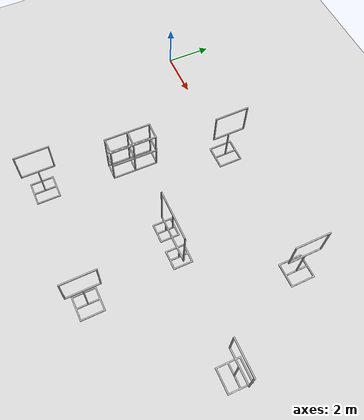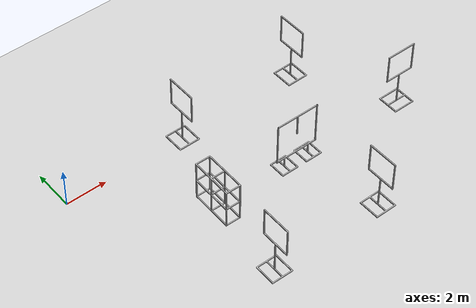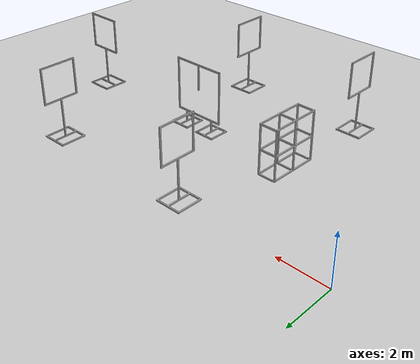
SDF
<sdf version="1.6">
 <world name="default">
  <light name="sun" type="directional">
   <pose>0 0 10 0 -0 0</pose>
   <diffuse>0.8 0.8 0.8 1</diffuse>
   <specular>0.2 0.2 0.2 1</specular>
   <attenuation>
    <range>1000</range>
    <constant>0.9</constant>
    <linear>0.01</linear>
    <quadratic>0.001</quadratic>
   </attenuation>
   <direction>-0.5 0.1 -0.9</direction>
  </light>
  <model name="ground_plane">
   <static>1</static>
   <link name="link">
    <collision name="collision">
     <geometry><plane><normal>0 0 1</normal><size>100 100</size></plane></geometry>
     <surface><friction><ode><mu>100</mu><mu2>50</mu2></ode></friction></surface>
    </collision>
    <visual name="visual">
     <cast_shadows>0</cast_shadows>
     <geometry><plane><normal>0 0 1</normal><size>100 100</size></plane></geometry>
     <material>
      <script><uri>file://media/materials/scripts/gazebo.material</uri><name>Gazebo/Grey</name></script>
     </material>
    </visual>
   </link>
  </model>
  <gravity>0 0 -9.8</gravity>
  <magnetic_field>6e-06 2.3e-05 -4.2e-05</magnetic_field>
  <atmosphere type="adiabatic"/>
  <physics name="default_physics" default="0" type="ode">
   <max_step_size>0.001</max_step_size>
   <real_time_factor>1</real_time_factor>
   <real_time_update_rate>1000</real_time_update_rate>
  </physics>
  <scene><ambient>0.4 0.4 0.4 1</ambient><background>0.7 0.7 0.7 1</background><shadows>1</shadows></scene>
  <spherical_coordinates>
   <surface_model>EARTH_WGS84</surface_model>
   <latitude_deg>0</latitude_deg>
   <longitude_deg>0</longitude_deg>
   <elevation>0</elevation>
   <heading_deg>0</heading_deg>
  </spherical_coordinates>
  <model name="dronerace gate 2018">
   <static>1</static>
   <pose>6.01008 -0.019664 0 0 0 -1.56726</pose>
   <link name="dronerace gate 2018">
    <visual name="gate">
     <geometry><mesh><uri>model://dronerace_gate_2018/normal_gate_2018.dae</uri></mesh></geometry>
    </visual>
    <collision name="gate_collision">
     <geometry><mesh><uri>model://dronerace_gate_2018/normal_gate_2018.dae</uri></mesh></geometry>
    </collision>
   </link>
  </model>
  <model name="dronerace gate 2018_0">
   <static>1</static>
   <pose>12.1255 0.047558 0 0 0 -1.55893</pose>
   <link name="dronerace gate 2018">
    <visual name="gate">
     <geometry><mesh><uri>model://dronerace_gate_2018/normal_gate_2018.dae</uri></mesh></geometry>
    </visual>
    <collision name="gate_collision">
     <geometry><mesh><uri>model://dronerace_gate_2018/normal_gate_2018.dae</uri></mesh></geometry>
    </collision>
   </link>
  </model>
  <model name="dronerace gate 2018_1">
   <static>1</static>
   <pose>14.7069 -4.1008 0 0 -0 0</pose>
   <link name="dronerace gate 2018">
    <visual name="gate">
     <geometry><mesh><uri>model://dronerace_gate_2018/normal_gate_2018.dae</uri></mesh></geometry>
    </visual>
    <collision name="gate_collision">
     <geometry><mesh><uri>model://dronerace_gate_2018/normal_gate_2018.dae</uri></mesh></geometry>
    </collision>
   </link>
  </model>
  <model name="dronerace gate 2018_2">
   <static>1</static>
   <pose>10.0075 -8.03958 0 0 0 -1.56109</pose>
   <link name="dronerace gate 2018">
    <visual name="gate">
     <geometry><mesh><uri>model://dronerace_gate_2018/normal_gate_2018.dae</uri></mesh></geometry>
    </visual>
    <collision name="gate_collision">
     <geometry><mesh><uri>model://dronerace_gate_2018/normal_gate_2018.dae</uri></mesh></geometry>
    </collision>
   </link>
  </model>
  <model name="dronerace gate 2018_3">
   <static>1</static>
   <pose>4.49893 -7.98025 0 0 0 -1.57578</pose>
   <link name="dronerace gate 2018">
    <visual name="gate">
     <geometry><mesh><uri>model://dronerace_gate_2018/normal_gate_2018.dae</uri></mesh></geometry>
    </visual>
    <collision name="gate_collision">
     <geometry><mesh><uri>model://dronerace_gate_2018/normal_gate_2018.dae</uri></mesh></geometry>
    </collision>
   </link>
  </model>
  <model name="dronerace gate 2018_4">
   <static>1</static>
   <pose>4.44209 -4.00684 0 0 0 -1.58223</pose>
   <link name="dronerace gate 2018">
    <visual name="gate">
     <geometry><mesh><uri>model://dronerace_junglegate_2018/jungle_gate_2018.dae</uri></mesh></geometry>
    </visual>
    <collision name="gate_collision">
     <geometry><mesh><uri>model://dronerace_junglegate_2018/jungle_gate_2018.dae</uri></mesh></geometry>
    </collision>
   </link>
  </model>
  <model name="dronerace dynamic gate 2018">
   <static>1</static>
   <pose>9.01324 -3.99203 0 0 -0 0</pose>
   <link name="dronerace dynamic gate 2018">
    <visual name="gate">
     <geometry><mesh><uri>model://dronerace_dynamicgate_2018/dynamic_gate_2018.dae</uri></mesh></geometry>
    </visual>
    <collision name="gate_collision">
     <geometry><mesh><uri>model://dronerace_dynamicgate_2018/dynamic_gate_2018.dae</uri></mesh></geometry>
    </collision>
   </link>
  </model>
 </world>
</sdf>
